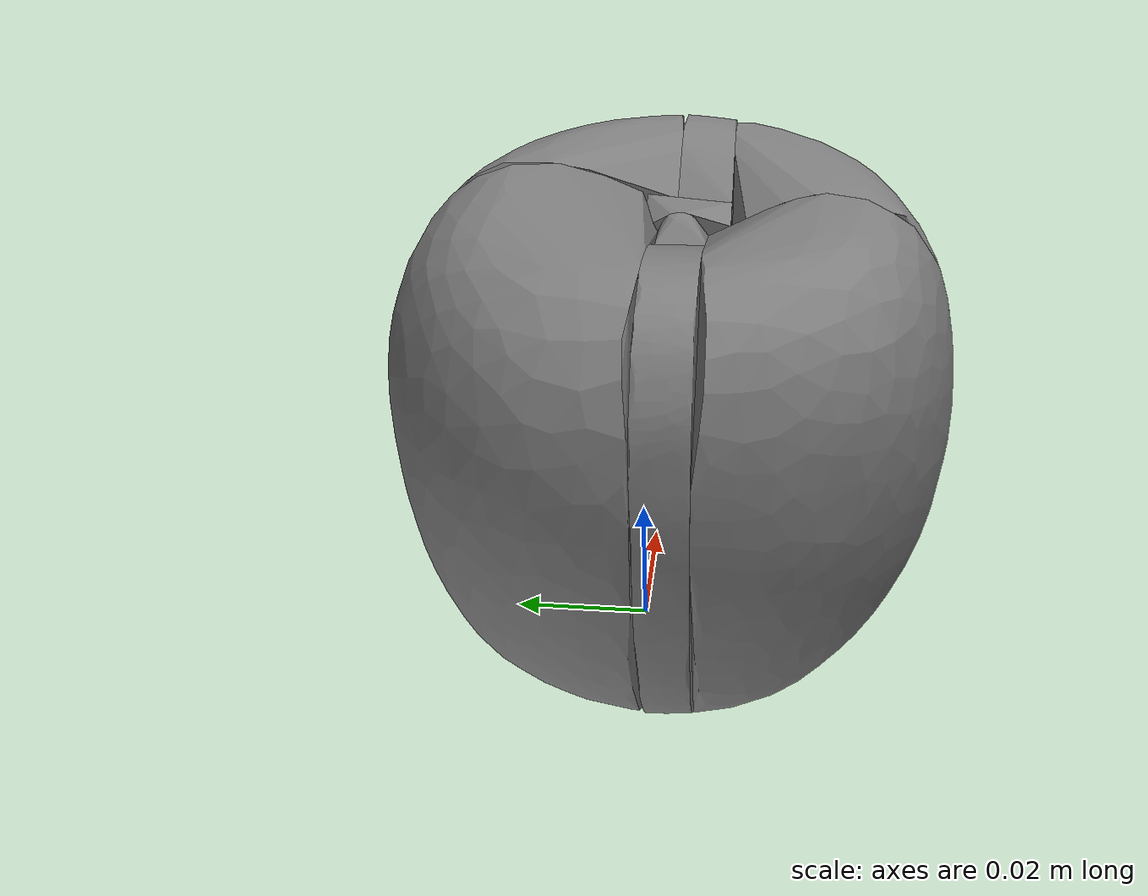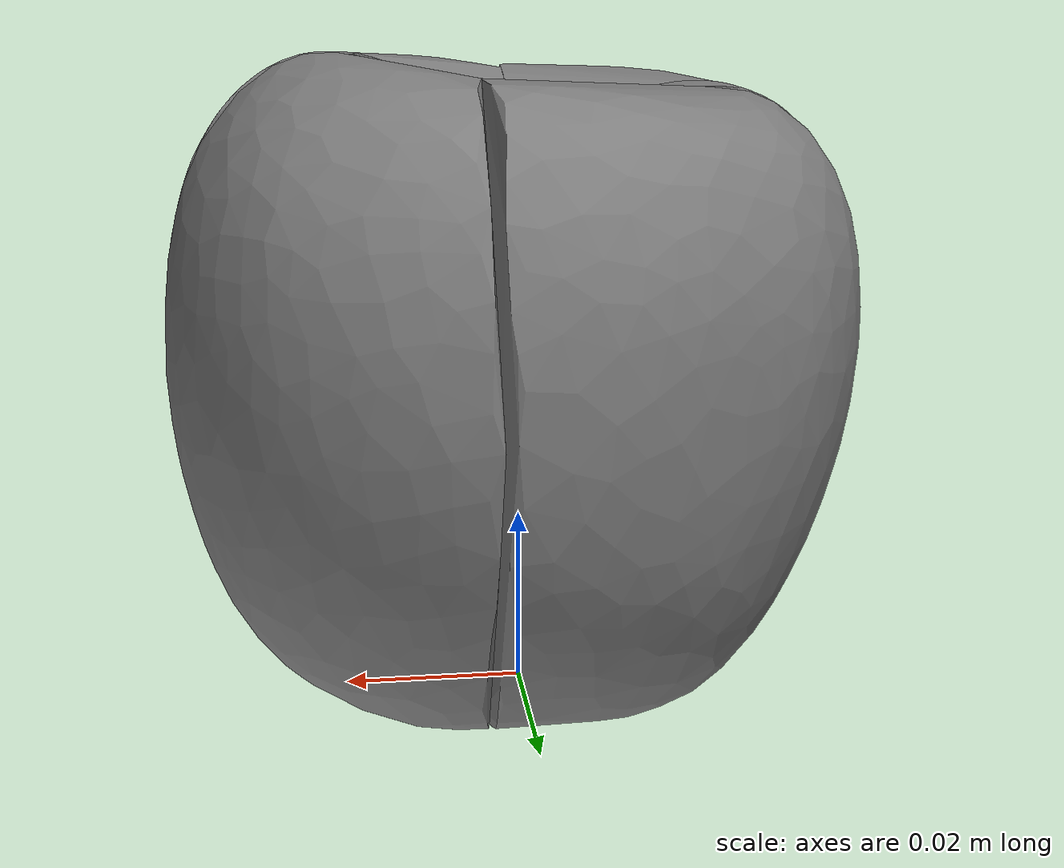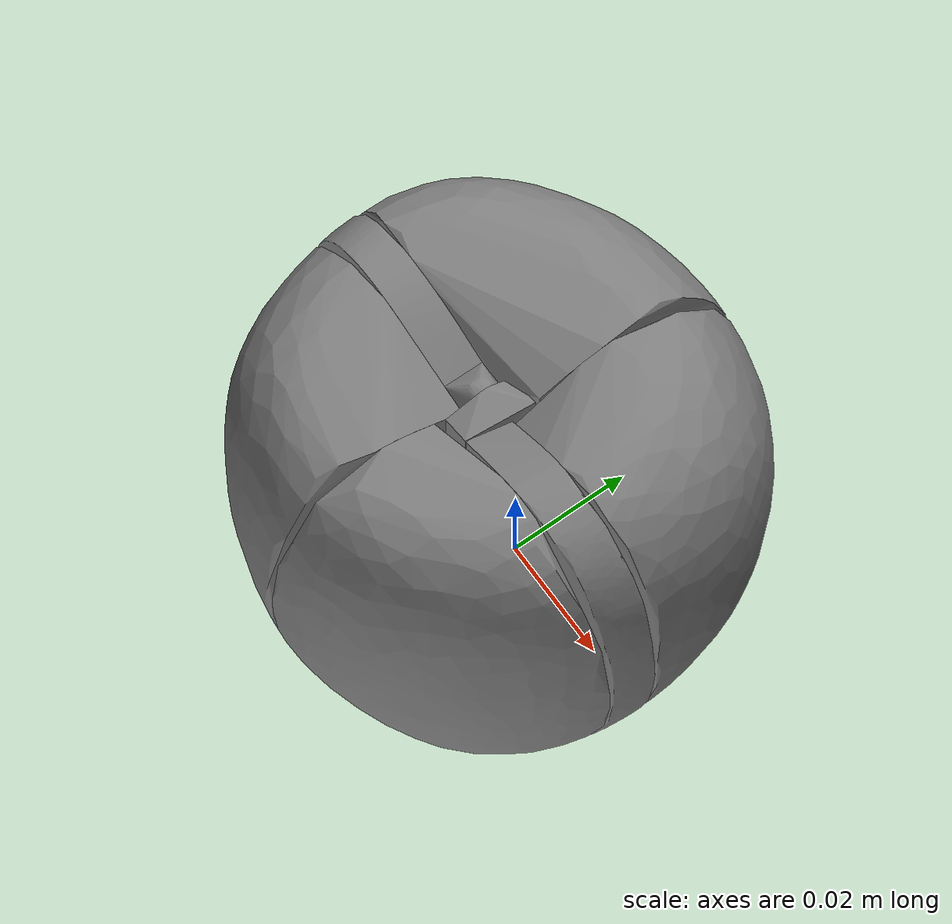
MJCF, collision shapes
<mujoco model="ycb_013_apple">
  <compiler meshdir="meshes" texturedir="meshes" angle="radian"/>
  <default>
    <default class="visual"><geom contype="0" conaffinity="0" group="2" density="0"/></default>
    <default class="collision"><geom group="3"/></default>
  </default>
  <asset>
    <texture name="ycb_013_apple_tex" type="2d" file="ycb_013_apple_texture.png"/>
    <material name="ycb_013_apple_mat" texture="ycb_013_apple_tex" specular="0.2" shininess="0.3"/>
    <mesh name="ycb_013_apple_visual" file="ycb_013_apple_visual.obj"/>
    <mesh name="ycb_013_apple_hull0" file="ycb_013_apple_hull0.obj"/>
    <mesh name="ycb_013_apple_hull1" file="ycb_013_apple_hull1.obj"/>
    <mesh name="ycb_013_apple_hull2" file="ycb_013_apple_hull2.obj"/>
    <mesh name="ycb_013_apple_hull3" file="ycb_013_apple_hull3.obj"/>
    <mesh name="ycb_013_apple_hull4" file="ycb_013_apple_hull4.obj"/>
    <mesh name="ycb_013_apple_hull5" file="ycb_013_apple_hull5.obj"/>
    <mesh name="ycb_013_apple_hull6" file="ycb_013_apple_hull6.obj"/>
    <mesh name="ycb_013_apple_hull7" file="ycb_013_apple_hull7.obj"/>
  </asset>
  <worldbody>
    <body name="object" pos="0 0 0">
      <freejoint name="object_free"/>
      <geom type="mesh" mesh="ycb_013_apple_visual" material="ycb_013_apple_mat" class="visual"/>
      <geom type="mesh" mesh="ycb_013_apple_hull0" class="collision"/>
      <geom type="mesh" mesh="ycb_013_apple_hull1" class="collision"/>
      <geom type="mesh" mesh="ycb_013_apple_hull2" class="collision"/>
      <geom type="mesh" mesh="ycb_013_apple_hull3" class="collision"/>
      <geom type="mesh" mesh="ycb_013_apple_hull4" class="collision"/>
      <geom type="mesh" mesh="ycb_013_apple_hull5" class="collision"/>
      <geom type="mesh" mesh="ycb_013_apple_hull6" class="collision"/>
      <geom type="mesh" mesh="ycb_013_apple_hull7" class="collision"/>
    </body>
  </worldbody>
</mujoco>
